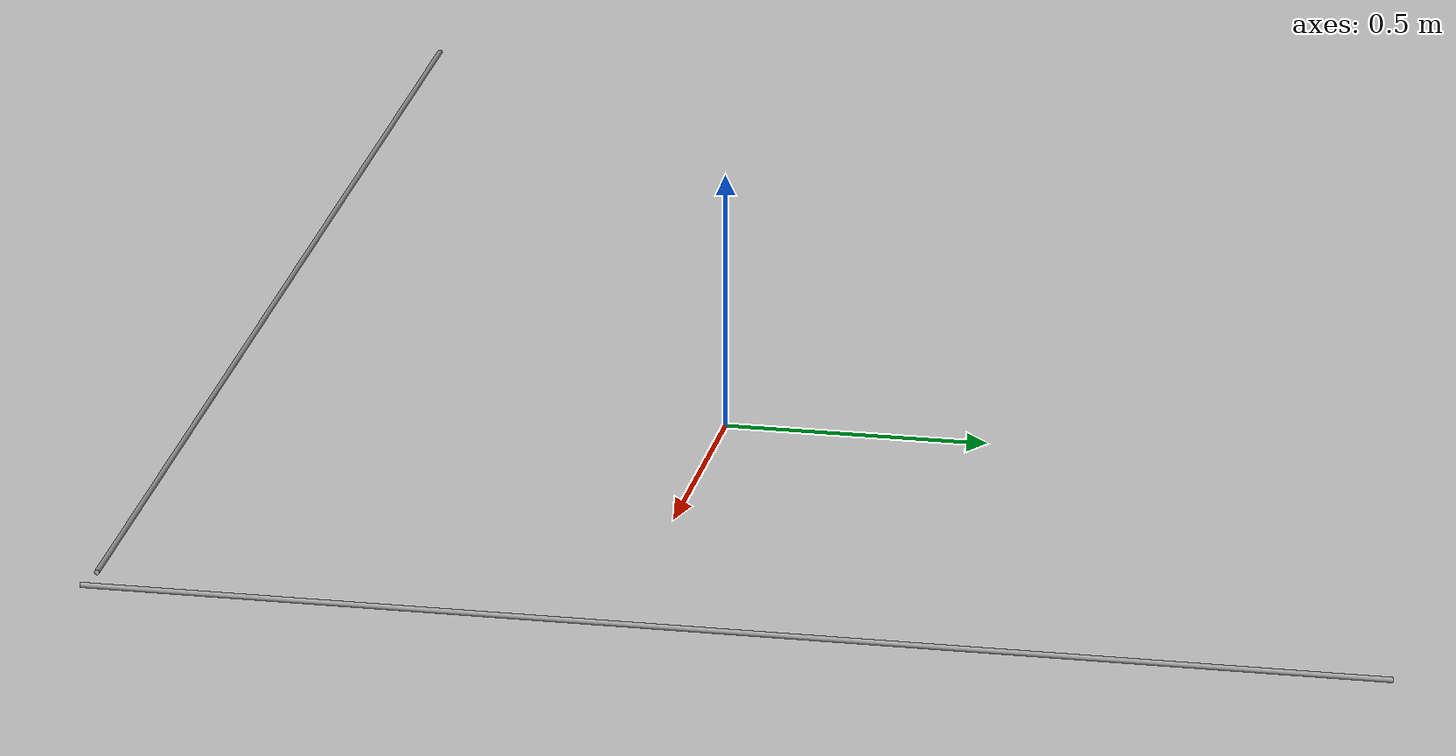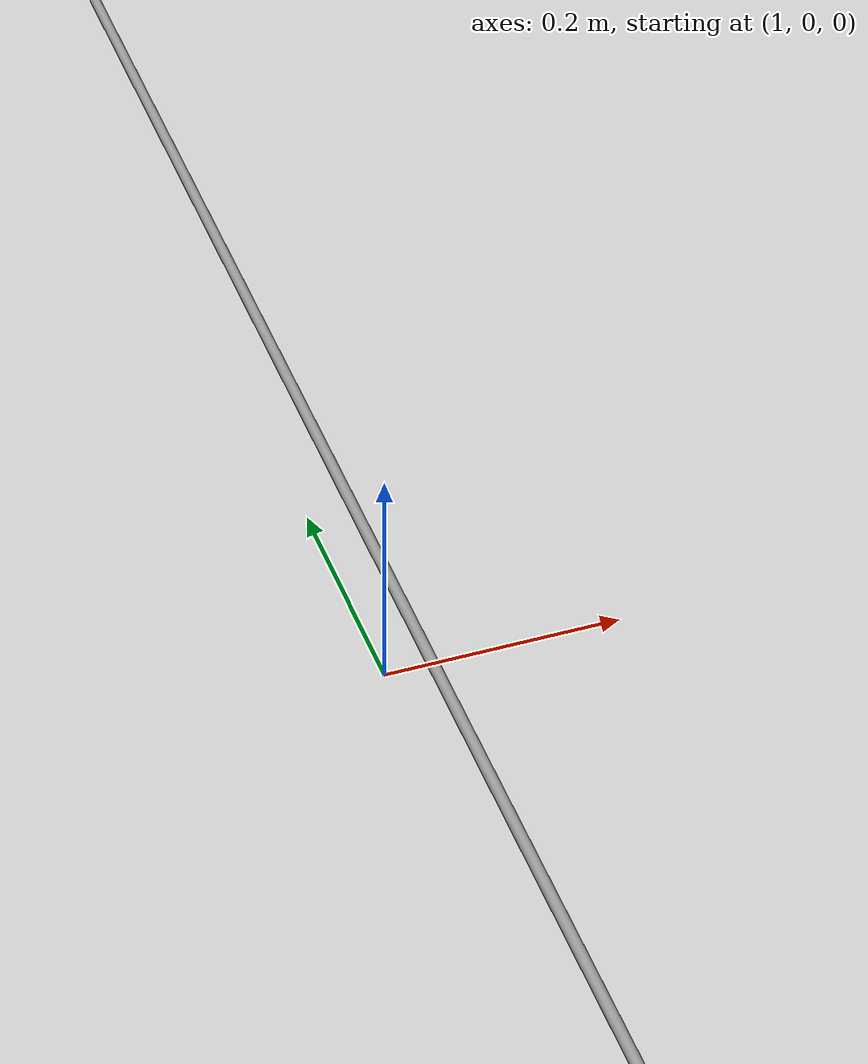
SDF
<sdf version="1.6">
 <world name="default">
  <light name="sun" type="directional">
   <pose>0 0 10 0 -0 0</pose>
   <diffuse>0.8 0.8 0.8 1</diffuse>
   <specular>0.1 0.1 0.1 1</specular>
   <attenuation>
    <range>1000</range>
    <constant>0.9</constant>
    <linear>0.01</linear>
    <quadratic>0.001</quadratic>
   </attenuation>
   <direction>-0.5 0.5 -1</direction>
  </light>
  <model name="ground_plane">
   <static>1</static>
   <link name="link">
    <collision name="collision">
     <geometry><plane><normal>0 0 1</normal><size>100 100</size></plane></geometry>
     <surface><friction><ode><mu>100</mu><mu2>50</mu2></ode></friction></surface>
    </collision>
    <visual name="visual">
     <cast_shadows>0</cast_shadows>
     <geometry><plane><normal>0 0 1</normal><size>100 100</size></plane></geometry>
     <material>
      <script><uri>file://media/materials/scripts/gazebo.material</uri><name>Gazebo/Grey</name></script>
     </material>
    </visual>
   </link>
  </model>
  <gravity>0 0 -9.8</gravity>
  <magnetic_field>6e-06 2.3e-05 -4.2e-05</magnetic_field>
  <atmosphere type="adiabatic"/>
  <physics name="default_physics" default="0" type="ode">
   <max_step_size>0.001</max_step_size>
   <real_time_factor>1</real_time_factor>
   <real_time_update_rate>1000</real_time_update_rate>
  </physics>
  <scene><ambient>0.4 0.4 0.4 1</ambient><background>0.7 0.7 0.7 1</background><shadows>1</shadows></scene>
  <spherical_coordinates>
   <surface_model>EARTH_WGS84</surface_model>
   <latitude_deg>0</latitude_deg>
   <longitude_deg>0</longitude_deg>
   <elevation>0</elevation>
   <heading_deg>0</heading_deg>
  </spherical_coordinates>
  <model name="unit_cylinder_0_1_0_0_0_0">
   <static>1</static>
   <link name="link">
    <inertial>
     <mass>1</mass>
     <inertia><ixx>0.145833</ixx><ixy>0</ixy><ixz>0</ixz><iyy>0.145833</iyy><iyz>0</iyz><izz>0.125</izz></inertia>
    </inertial>
    <gravity>0</gravity>
    <visual name="visual">
     <geometry><cylinder><radius>0.005</radius><length>2.38887</length></cylinder></geometry>
     <material>
      <script><name>Gazebo/Grey</name><uri>file://media/materials/scripts/gazebo.material</uri></script>
      <ambient>0.3 0.3 0.3 1</ambient>
      <diffuse>0.7 0.7 0.7 1</diffuse>
      <specular>0.01 0.01 0.01 1</specular>
      <emissive>0 0 0 1</emissive>
      <shader type="vertex"><normal_map>__default__</normal_map></shader>
     </material>
    </visual>
    <collision name="collision">
     <geometry><cylinder><radius>0.005</radius><length>2.38887</length></cylinder></geometry>
     <surface>
      <friction>
       <ode><mu>1</mu><mu2>1</mu2><fdir1>0 0 0</fdir1><slip1>0</slip1><slip2>0</slip2></ode>
       <torsional>
        <coefficient>1</coefficient>
        <patch_radius>0</patch_radius>
        <surface_radius>0</surface_radius>
        <use_patch_radius>1</use_patch_radius>
        <ode><slip>0</slip></ode>
       </torsional>
      </friction>
      <bounce><restitution_coefficient>0</restitution_coefficient><threshold>1e+06</threshold></bounce>
      <contact>
       <collide_without_contact>0</collide_without_contact>
       <collide_without_contact_bitmask>1</collide_without_contact_bitmask>
       <collide_bitmask>1</collide_bitmask>
       <ode>
        <soft_cfm>0</soft_cfm>
        <soft_erp>0.2</soft_erp>
        <kp>1e+13</kp>
        <kd>1</kd>
        <max_vel>0.01</max_vel>
        <min_depth>0</min_depth>
       </ode>
       <bullet>
        <split_impulse>1</split_impulse>
        <split_impulse_penetration_threshold>-0.01</split_impulse_penetration_threshold>
        <soft_cfm>0</soft_cfm>
        <soft_erp>0.2</soft_erp>
        <kp>1e+13</kp>
        <kd>1</kd>
       </bullet>
      </contact>
     </surface>
    </collision>
   </link>
   <static>0</static>
   <pose>1.03903 0.206946 0.005 1.5708 -4e-06 0</pose>
  </model>
  <model name="unit_cylinder_0_2_0_0">
   <static>1</static>
   <link name="link">
    <inertial>
     <mass>1</mass>
     <inertia><ixx>0.145833</ixx><ixy>0</ixy><ixz>0</ixz><iyy>0.145833</iyy><iyz>0</iyz><izz>0.125</izz></inertia>
    </inertial>
    <gravity>0</gravity>
    <visual name="visual">
     <geometry><cylinder><radius>0.005</radius><length>3.04893</length></cylinder></geometry>
     <material>
      <script><name>Gazebo/Grey</name><uri>file://media/materials/scripts/gazebo.material</uri></script>
      <ambient>0.3 0.3 0.3 1</ambient>
      <diffuse>0.7 0.7 0.7 1</diffuse>
      <specular>0.01 0.01 0.01 1</specular>
      <emissive>0 0 0 1</emissive>
      <shader type="vertex"><normal_map>__default__</normal_map></shader>
     </material>
    </visual>
    <collision name="collision">
     <geometry><cylinder><radius>0.005</radius><length>3.04893</length></cylinder></geometry>
     <surface>
      <friction>
       <ode><mu>1</mu><mu2>1</mu2><fdir1>0 0 0</fdir1><slip1>0</slip1><slip2>0</slip2></ode>
       <torsional>
        <coefficient>1</coefficient>
        <patch_radius>0</patch_radius>
        <surface_radius>0</surface_radius>
        <use_patch_radius>1</use_patch_radius>
        <ode><slip>0</slip></ode>
       </torsional>
      </friction>
      <bounce><restitution_coefficient>0</restitution_coefficient><threshold>1e+06</threshold></bounce>
      <contact>
       <collide_without_contact>0</collide_without_contact>
       <collide_without_contact_bitmask>1</collide_without_contact_bitmask>
       <collide_bitmask>1</collide_bitmask>
       <ode>
        <soft_cfm>0</soft_cfm>
        <soft_erp>0.2</soft_erp>
        <kp>1e+13</kp>
        <kd>1</kd>
        <max_vel>0.01</max_vel>
        <min_depth>0</min_depth>
       </ode>
       <bullet>
        <split_impulse>1</split_impulse>
        <split_impulse_penetration_threshold>-0.01</split_impulse_penetration_threshold>
        <soft_cfm>0</soft_cfm>
        <soft_erp>0.2</soft_erp>
        <kp>1e+13</kp>
        <kd>1</kd>
       </bullet>
      </contact>
     </surface>
    </collision>
   </link>
   <static>0</static>
   <pose>-0.550532 -0.996074 0.005 1.5708 -0 1.5857</pose>
  </model>
 </world>
</sdf>
